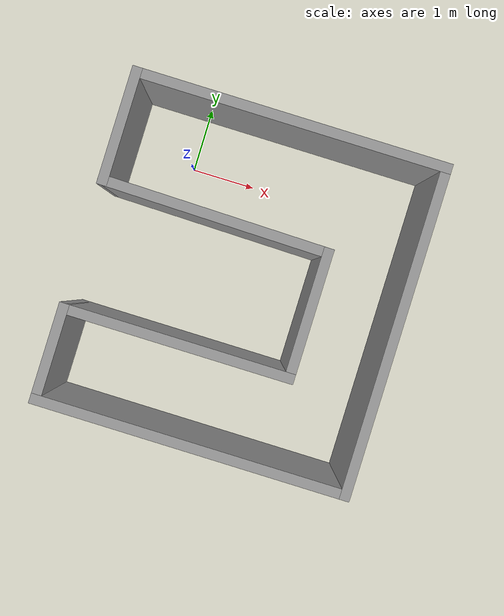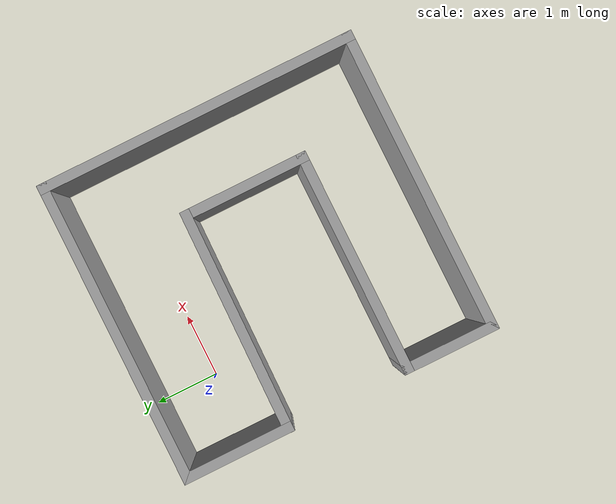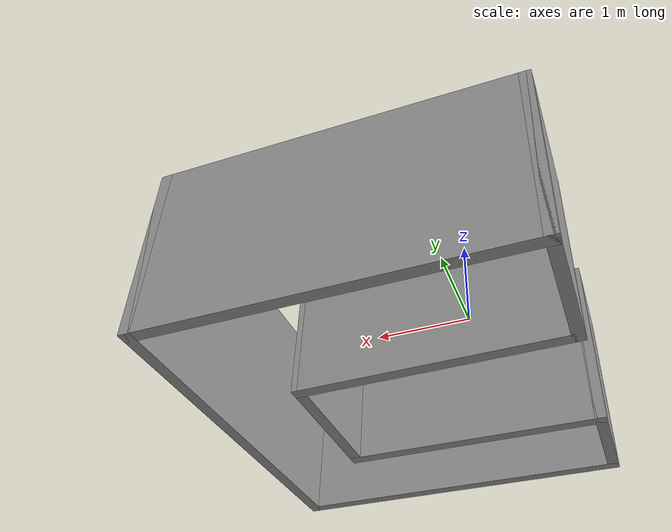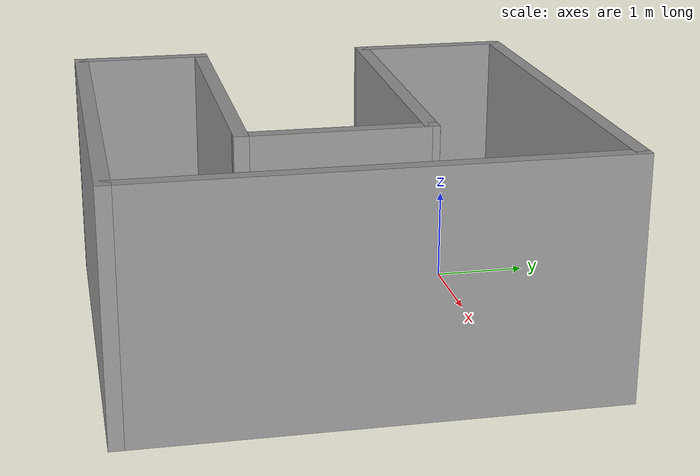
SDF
<?xml version='1.0'?>
<sdf version='1.6'>
  <model name='Untitled1'>
    <pose frame=''>1.26566 -1.5305 0 0 -0 0</pose>
    <link name='Wall_42'>
      <collision name='Wall_42_Collision'>
        <geometry>
          <box>
            <size>1.75 0.15 2.5</size>
          </box>
        </geometry>
        <pose frame=''>0 0 1.25 0 -0 0</pose>
      </collision>
      <visual name='Wall_42_Visual'>
        <pose frame=''>0 0 1.25 0 -0 0</pose>
        <geometry>
          <box>
            <size>1.75 0.15 2.5</size>
          </box>
        </geometry>
        <material>
          <script>
            <uri>file://media/materials/scripts/gazebo.material</uri>
            <name>Gazebo/Grey</name>
          </script>
          <ambient>1 1 1 1</ambient>
        </material>
        <meta>
          <layer>0</layer>
        </meta>
      </visual>
      <pose frame=''>-2.29944 1.625 0 0 -0 1.5708</pose>
    </link>
    <link name='Wall_44'>
      <collision name='Wall_44_Collision'>
        <geometry>
          <box>
            <size>4.75 0.15 2.5</size>
          </box>
        </geometry>
        <pose frame=''>0 0 1.25 0 -0 0</pose>
      </collision>
      <visual name='Wall_44_Visual'>
        <pose frame=''>0 0 1.25 0 -0 0</pose>
        <geometry>
          <box>
            <size>4.75 0.15 2.5</size>
          </box>
        </geometry>
        <material>
          <script>
            <uri>file://media/materials/scripts/gazebo.material</uri>
            <name>Gazebo/Grey</name>
          </script>
          <ambient>1 1 1 1</ambient>
        </material>
        <meta>
          <layer>0</layer>
        </meta>
      </visual>
      <pose frame=''>0.000555 2.425 0 0 -0 0</pose>
    </link>
    <link name='Wall_45'>
      <collision name='Wall_45_Collision'>
        <geometry>
          <box>
            <size>5 0.15 2.5</size>
          </box>
        </geometry>
        <pose frame=''>0 0 1.25 0 -0 0</pose>
      </collision>
      <visual name='Wall_45_Visual'>
        <pose frame=''>0 0 1.25 0 -0 0</pose>
        <geometry>
          <box>
            <size>5 0.15 2.5</size>
          </box>
        </geometry>
        <material>
          <script>
            <uri>file://media/materials/scripts/gazebo.material</uri>
            <name>Gazebo/Grey</name>
          </script>
          <ambient>1 1 1 1</ambient>
        </material>
        <meta>
          <layer>0</layer>
        </meta>
      </visual>
      <pose frame=''>2.30056 -0 0 0 -0 -1.5708</pose>
    </link>
    <link name='Wall_46'>
      <collision name='Wall_46_Collision'>
        <geometry>
          <box>
            <size>4.75 0.15 2.5</size>
          </box>
        </geometry>
        <pose frame=''>0 0 1.25 0 -0 0</pose>
      </collision>
      <visual name='Wall_46_Visual'>
        <pose frame=''>0 0 1.25 0 -0 0</pose>
        <geometry>
          <box>
            <size>4.75 0.15 2.5</size>
          </box>
        </geometry>
        <material>
          <script>
            <uri>file://media/materials/scripts/gazebo.material</uri>
            <name>Gazebo/Grey</name>
          </script>
          <ambient>1 1 1 1</ambient>
        </material>
        <meta>
          <layer>0</layer>
        </meta>
      </visual>
      <pose frame=''>0.000555 -2.425 0 0 -0 3.14159</pose>
    </link>
    <link name='Wall_47'>
      <collision name='Wall_47_Collision'>
        <geometry>
          <box>
            <size>1.5 0.15 2.5</size>
          </box>
        </geometry>
        <pose frame=''>0 0 1.25 0 -0 0</pose>
      </collision>
      <visual name='Wall_47_Visual'>
        <pose frame=''>0 0 1.25 0 -0 0</pose>
        <geometry>
          <box>
            <size>1.5 0.15 2.5</size>
          </box>
        </geometry>
        <material>
          <script>
            <uri>file://media/materials/scripts/gazebo.material</uri>
            <name>Gazebo/Grey</name>
          </script>
          <ambient>1 1 1 1</ambient>
        </material>
        <meta>
          <layer>0</layer>
        </meta>
      </visual>
      <pose frame=''>-2.29944 -1.75 0 0 -0 1.5708</pose>
    </link>
    <link name='Wall_48'>
      <collision name='Wall_48_Collision'>
        <geometry>
          <box>
            <size>3.5 0.15 2.5</size>
          </box>
        </geometry>
        <pose frame=''>0 0 1.25 0 -0 0</pose>
      </collision>
      <visual name='Wall_48_Visual'>
        <pose frame=''>0 0 1.25 0 -0 0</pose>
        <geometry>
          <box>
            <size>3.5 0.15 2.5</size>
          </box>
        </geometry>
        <material>
          <script>
            <uri>file://media/materials/scripts/gazebo.material</uri>
            <name>Gazebo/Grey</name>
          </script>
          <ambient>1 1 1 1</ambient>
        </material>
        <meta>
          <layer>0</layer>
        </meta>
      </visual>
      <pose frame=''>-0.624445 -1.075 0 0 -0 0</pose>
    </link>
    <link name='Wall_49'>
      <collision name='Wall_49_Collision'>
        <geometry>
          <box>
            <size>2 0.15 2.5</size>
          </box>
        </geometry>
        <pose frame=''>0 0 1.25 0 -0 0</pose>
      </collision>
      <visual name='Wall_49_Visual'>
        <pose frame=''>0 0 1.25 0 -0 0</pose>
        <geometry>
          <box>
            <size>2 0.15 2.5</size>
          </box>
        </geometry>
        <material>
          <script>
            <uri>file://media/materials/scripts/gazebo.material</uri>
            <name>Gazebo/Grey</name>
          </script>
          <ambient>1 1 1 1</ambient>
        </material>
        <meta>
          <layer>0</layer>
        </meta>
      </visual>
      <pose frame=''>1.05055 -0.15 0 0 -0 1.5708</pose>
    </link>
    <link name='Wall_50'>
      <collision name='Wall_50_Collision'>
        <geometry>
          <box>
            <size>3.50037 0.15 2.5</size>
          </box>
        </geometry>
        <pose frame=''>0 0 1.25 0 -0 0</pose>
      </collision>
      <visual name='Wall_50_Visual'>
        <pose frame=''>0 0 1.25 0 -0 0</pose>
        <geometry>
          <box>
            <size>3.50037 0.15 2.5</size>
          </box>
        </geometry>
        <material>
          <script>
            <uri>file://media/materials/scripts/gazebo.material</uri>
            <name>Gazebo/Grey</name>
          </script>
          <ambient>1 1 1 1</ambient>
        </material>
        <meta>
          <layer>0</layer>
        </meta>
      </visual>
      <pose frame=''>-0.624445 0.8 0 0 -0 3.12667</pose>
    </link>
    <static>1</static>
  </model>
</sdf>
